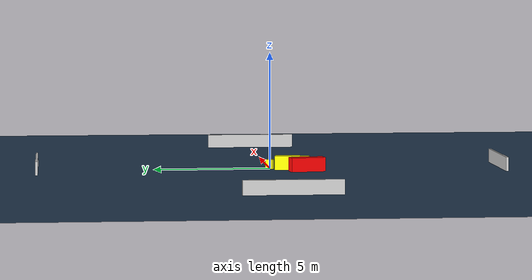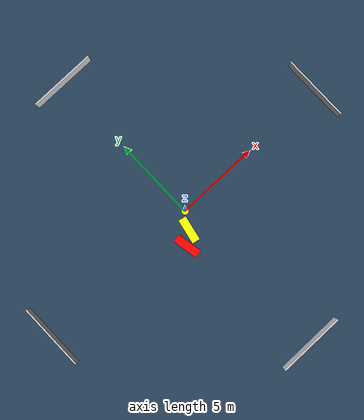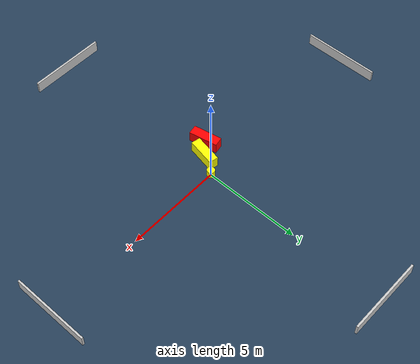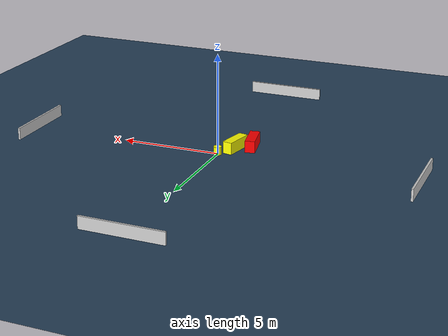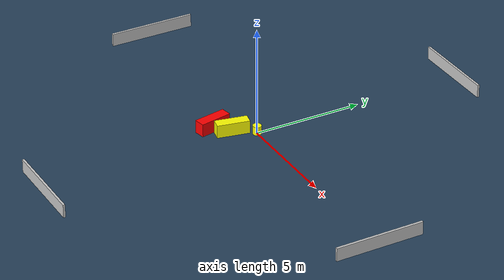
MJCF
<?xml version="1.0" ?>
<mujoco model="generated_environment">
  <option timestep="0.01" integrator="RK4" cone="elliptic"/>
  <default>
    <geom density="1"/>
  </default>
  <asset>
    <texture builtin="gradient" height="3072" name="skybox" rgb1="0.3 0.5 0.7" rgb2="0 0 0" type="skybox" width="512"/>
    <texture builtin="checker" height="300" name="groundplane" rgb1="0.2 0.3 0.4" rgb2="0.1 0.2 0.3" type="2d" width="300"/>
    <material name="groundplane" reflectance="0.2" texrepeat="5 5" texture="groundplane"/>
  </asset>
  <worldbody>
    <light dir="0 0 -1" directional="true" pos="0 0 1.5"/>
    <geom condim="3" friction="0.5 0.005 0.001" material="groundplane" name="floor" pos="0 0 0" size="0 0 0.05" type="plane"/>
    <body name="walls">
      <geom name="wall_1" condim="4" pos="-10.0 0.0 0.3" rgba="0.800000011920929 0.800000011920929 0.800000011920929 1.0" size="0.05 2.0 0.3" type="box"/>
      <geom name="wall_2" condim="4" pos="10.0 0.0 0.3" rgba="0.800000011920929 0.800000011920929 0.800000011920929 1.0" size="0.05 2.0 0.3" type="box"/>
      <geom name="wall_3" condim="4" pos="0.0 -10.0 0.3" rgba="0.800000011920929 0.800000011920929 0.800000011920929 1.0" size="2.0 0.05 0.3" type="box"/>
      <geom name="wall_4" condim="4" pos="0.0 10.0 0.3" rgba="0.800000011920929 0.800000011920929 0.800000011920929 1.0" size="2.0 0.05 0.3" type="box"/>
    </body>
    <body name="robot">
      <joint name="joint_x" type="slide" pos="0 0 0" axis="1 0 0"/>
      <joint name="joint_y" type="slide" pos="0 0 0" axis="0 1 0"/>
      <geom name="robot" type="cylinder" pos="0.0 0.0 0.2" size="0.2 0.2 0.0" mass="5.0" friction="1.0 0.005 0.0001" condim="4" rgba="1.0 1.0 0.0 1.0"/>
    </body>
    <body name="obstacle_1_movable">
      <geom name="obstacle_1_movable" condim="4" pos="-0.5555090393419381 -0.9133698388995275 0.3" euler="0 0 258.5596277497957" friction="0.0 0.005 0.001" rgba="1.0 1.0 0.0 1.0" size="0.7343123631211448 0.23916625357486931 0.3" type="box" mass="0.1"/>
      <joint type="free"/>
    </body>
    <body name="obstacle_2_static">
      <geom name="obstacle_2_static" condim="4" pos="-1.236842971592608 -1.48965086586657 0.3" euler="0 0 10.824529200749788" friction="0.0 0.005 0.001" rgba="1.0 0.0 0.0 1.0" size="0.24716243011738515 0.74424472510909 0.3" type="box"/>
    </body>
  </worldbody>
  <actuator>
    <motor name="actuator_x" joint="joint_x" gear="1" ctrlrange="-1 1"/>
    <motor name="actuator_y" joint="joint_y" gear="1" ctrlrange="-1 1"/>
  </actuator>
</mujoco>
